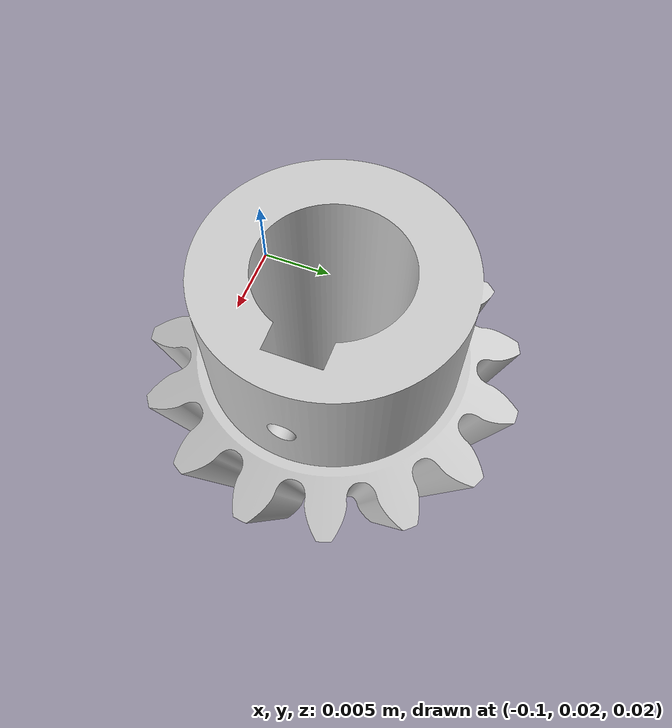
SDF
<?xml version="1.0"?>
<sdf version="1.8">
  <model name='my_model'>
    <link name='my_link'>
      <inertial>
        <mass>1.0</mass>
        <inertia>
          <ixx>0.1</ixx>
          <ixy>0.0</ixy>
          <ixz>0.0</ixz>
          <iyy>0.1</iyy>
          <iyz>0.0</iyz>
          <izz>0.1</izz>
        </inertia>
      </inertial>
      <collision name='my_collision'>
        <pose>-0.1 0.04 0 1.5708 0 0</pose>
        <geometry>
          <mesh>
            <uri>model://my_model/my_mesh.stl</uri>
            <scale>0.001 0.001 0.001</scale>
          </mesh>
        </geometry>
      </collision>
      <visual name='my_visual'>
        <pose>-0.1 0.04 0 1.5708 0 0</pose>
        <geometry>
          <mesh>
            <uri>model://my_model/my_mesh.stl</uri>
            <scale>0.001 0.001 0.001</scale>
          </mesh>
        </geometry>
        <material>
          <ambient>0.5 0.5 0.5 1</ambient>
          <diffuse>0.8 0.8 0.8 1</diffuse>
          <specular>0.5 0.5 0.5 1</specular>
        </material>
      </visual>
    </link>
  </model>
</sdf>
